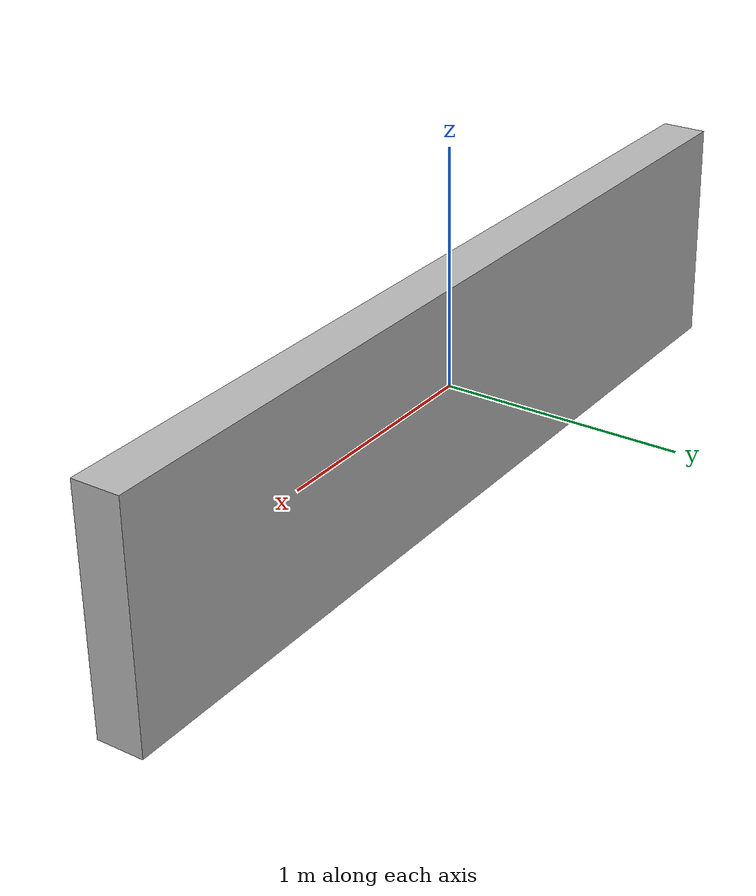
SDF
<?xml version='1.0'?>
<sdf version='1.6'>
  <model name='room2_wall1'>
    <static>true</static>
    <link name='link'>
      <collision name='collision'>
        <geometry><box><size>4 0.2 1.0</size></box></geometry>
      </collision>
      <visual name='visual'>
        <geometry><box><size>4 0.2 1.0</size></box></geometry>
      </visual>
    </link>
  </model>
</sdf>
